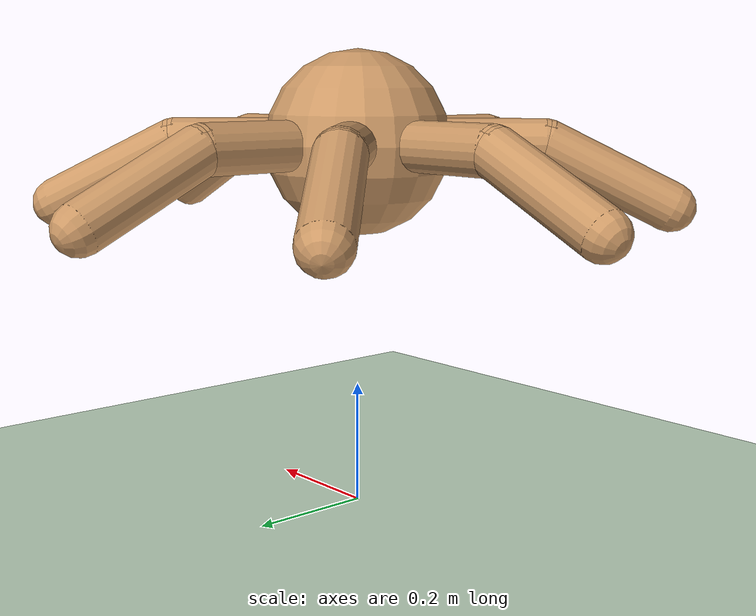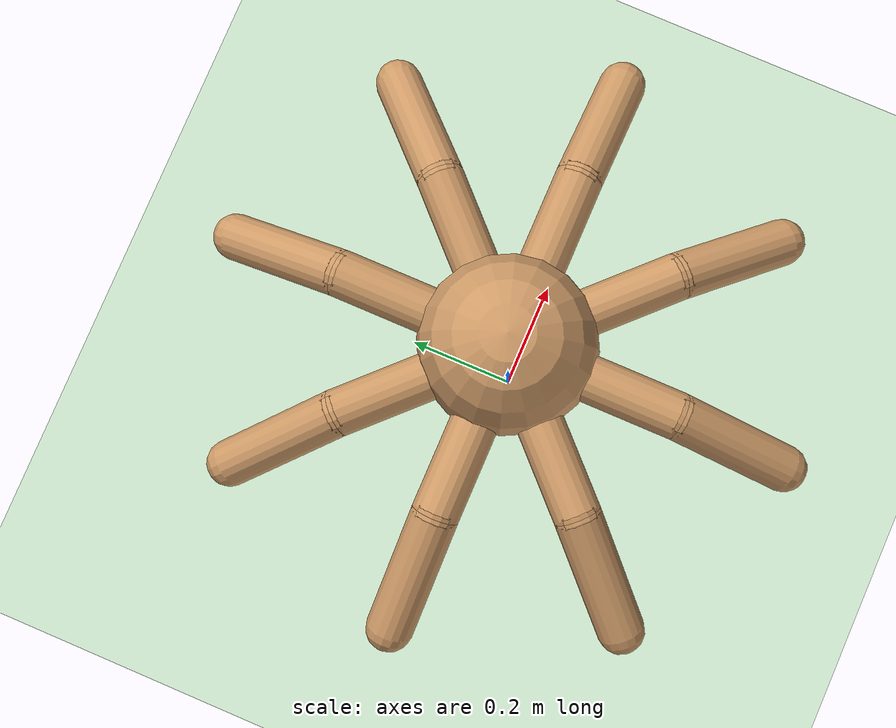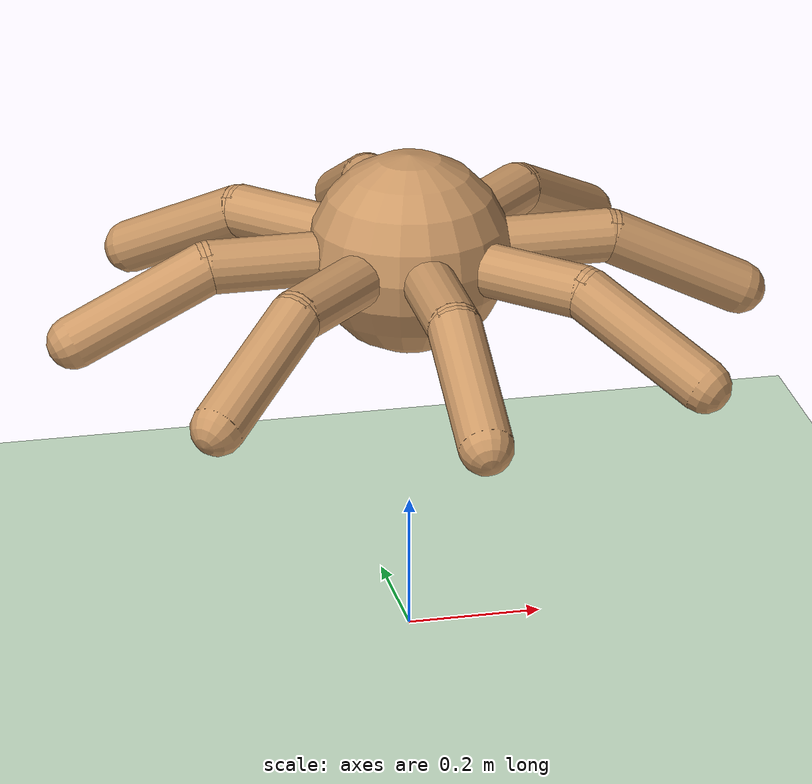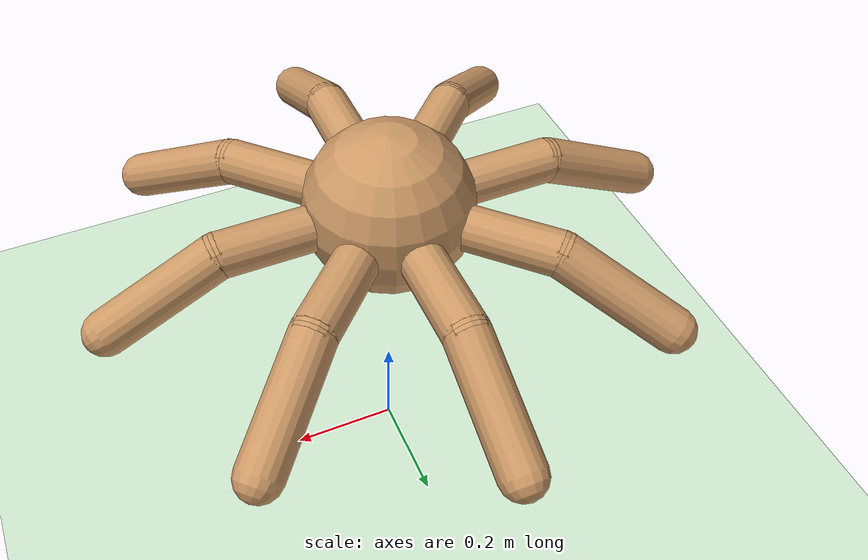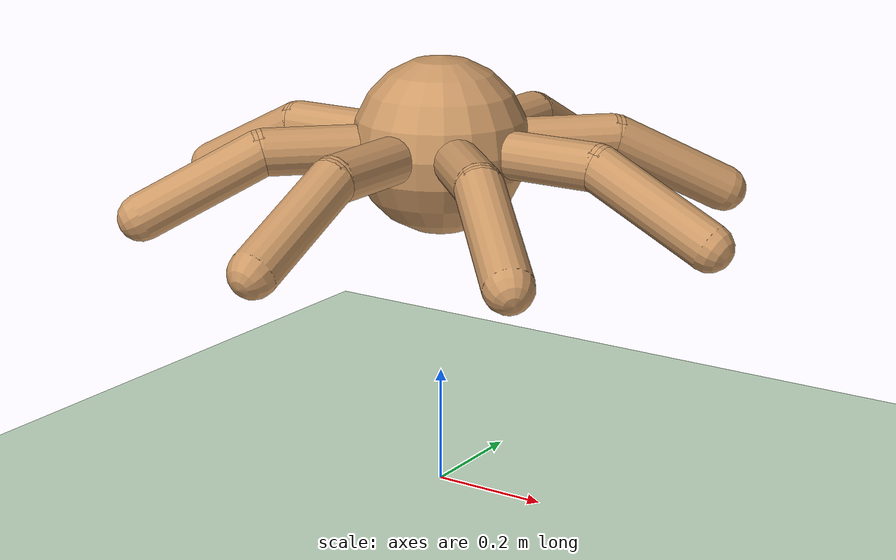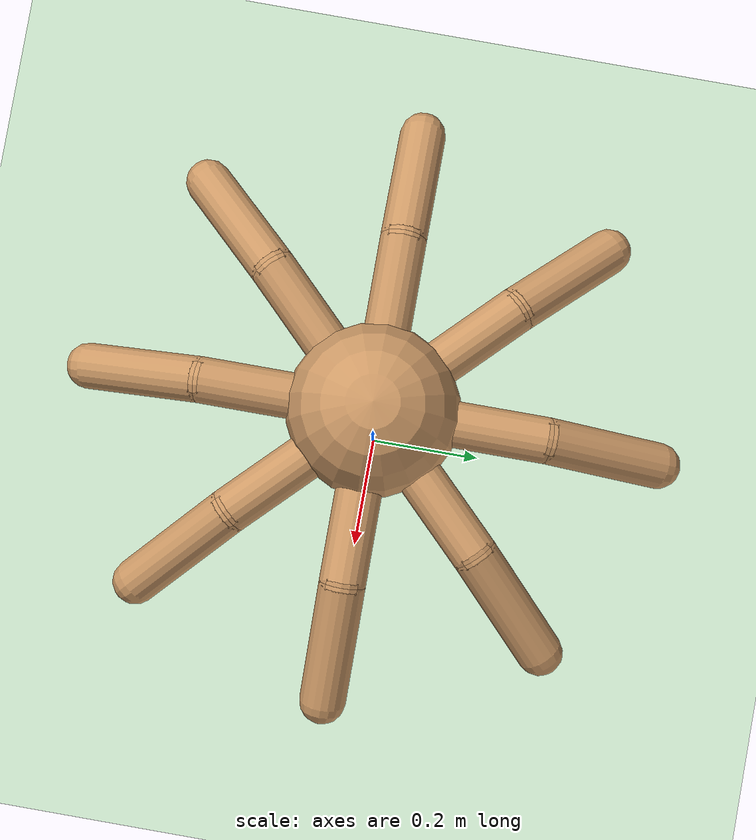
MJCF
<mujoco model="mutant_ant">
  <compiler angle="degree" coordinate="local" inertiafromgeom="true"/>
  <option integrator="RK4" timestep="0.01"/>
  <default>
    <joint armature="1" damping="1" limited="true"/>
    <geom conaffinity="1" condim="3" density="5.0" friction="1 0.5 0.5" margin="0.01" rgba="0.8 0.6 0.4 1"/>
  </default>
  <asset>
    <texture builtin="checker" height="512" name="texplane" rgb1=".2 .3 .4" rgb2=".1 0.15 0.2" type="2d" width="512"/>
    <material name="MatPlane" reflectance="0.5" shininess="1" specular="1" texrepeat="60 60" texture="texplane"/>
  </asset>
  <worldbody>
    <light cutoff="100" diffuse="1 1 1" dir="-0 0 -1.3" directional="true" exponent="1" pos="0 0 1.3" specular=".1 .1 .1"/>
    <geom conaffinity="1" condim="3" material="MatPlane" name="floor" pos="0 0 0" rgba="0.8 0.9 0.8 1" size="40 40 40" type="plane"/>
    <body name="torso" pos="0 0 0.600">
      <camera name="track" mode="trackcom" pos="0 -3 2.0" euler="60 0 0"/>
      <freejoint name="root"/>
      <geom name="torso_geom" pos="0 0 0" size="0.15" type="sphere"/>
      <body name="leg_0" pos="0 0 0" euler="0 0 0.000">
        <geom fromto="0.0 0.0 0.0 0.1 0.0 0.0" name="aux_0_geom" size="0.04" type="capsule"/>
        <body name="leg_0_aux" pos="0.1 0.0 0">
          <joint axis="0 0 1" name="hip_0" pos="0.0 0.0 0.0" range="-30.000 30.000" type="hinge"/>
          <geom fromto="0.0 0.0 0.0 0.200 0.0 0.0" name="thigh_0_geom" size="0.04" type="capsule"/>
          <body pos="0.200 0.0 0" name="leg_0_ankle">
            <joint axis="0 1 0" name="ankle_0" pos="0.0 0.0 0.0" range="30.000 70.000" type="hinge"/>
            <geom fromto="0.0 0.0 0.0 0.200 0.0 -0.1" name="calf_0_geom" size="0.04" type="capsule"/>
          </body>
        </body>
      </body>
      <body name="leg_1" pos="0 0 0" euler="0 0 45.000">
        <geom fromto="0.0 0.0 0.0 0.1 0.0 0.0" name="aux_1_geom" size="0.04" type="capsule"/>
        <body name="leg_1_aux" pos="0.1 0.0 0">
          <joint axis="0 0 1" name="hip_1" pos="0.0 0.0 0.0" range="-30.000 30.000" type="hinge"/>
          <geom fromto="0.0 0.0 0.0 0.200 0.0 0.0" name="thigh_1_geom" size="0.04" type="capsule"/>
          <body pos="0.200 0.0 0" name="leg_1_ankle">
            <joint axis="0 1 0" name="ankle_1" pos="0.0 0.0 0.0" range="30.000 70.000" type="hinge"/>
            <geom fromto="0.0 0.0 0.0 0.200 0.0 -0.1" name="calf_1_geom" size="0.04" type="capsule"/>
          </body>
        </body>
      </body>
      <body name="leg_2" pos="0 0 0" euler="0 0 90.000">
        <geom fromto="0.0 0.0 0.0 0.1 0.0 0.0" name="aux_2_geom" size="0.04" type="capsule"/>
        <body name="leg_2_aux" pos="0.1 0.0 0">
          <joint axis="0 0 1" name="hip_2" pos="0.0 0.0 0.0" range="-30.000 30.000" type="hinge"/>
          <geom fromto="0.0 0.0 0.0 0.200 0.0 0.0" name="thigh_2_geom" size="0.04" type="capsule"/>
          <body pos="0.200 0.0 0" name="leg_2_ankle">
            <joint axis="0 1 0" name="ankle_2" pos="0.0 0.0 0.0" range="30.000 70.000" type="hinge"/>
            <geom fromto="0.0 0.0 0.0 0.200 0.0 -0.1" name="calf_2_geom" size="0.04" type="capsule"/>
          </body>
        </body>
      </body>
      <body name="leg_3" pos="0 0 0" euler="0 0 135.000">
        <geom fromto="0.0 0.0 0.0 0.1 0.0 0.0" name="aux_3_geom" size="0.04" type="capsule"/>
        <body name="leg_3_aux" pos="0.1 0.0 0">
          <joint axis="0 0 1" name="hip_3" pos="0.0 0.0 0.0" range="-30.000 30.000" type="hinge"/>
          <geom fromto="0.0 0.0 0.0 0.200 0.0 0.0" name="thigh_3_geom" size="0.04" type="capsule"/>
          <body pos="0.200 0.0 0" name="leg_3_ankle">
            <joint axis="0 1 0" name="ankle_3" pos="0.0 0.0 0.0" range="30.000 70.000" type="hinge"/>
            <geom fromto="0.0 0.0 0.0 0.200 0.0 -0.1" name="calf_3_geom" size="0.04" type="capsule"/>
          </body>
        </body>
      </body>
      <body name="leg_4" pos="0 0 0" euler="0 0 180.000">
        <geom fromto="0.0 0.0 0.0 0.1 0.0 0.0" name="aux_4_geom" size="0.04" type="capsule"/>
        <body name="leg_4_aux" pos="0.1 0.0 0">
          <joint axis="0 0 1" name="hip_4" pos="0.0 0.0 0.0" range="-30.000 30.000" type="hinge"/>
          <geom fromto="0.0 0.0 0.0 0.200 0.0 0.0" name="thigh_4_geom" size="0.04" type="capsule"/>
          <body pos="0.200 0.0 0" name="leg_4_ankle">
            <joint axis="0 1 0" name="ankle_4" pos="0.0 0.0 0.0" range="30.000 70.000" type="hinge"/>
            <geom fromto="0.0 0.0 0.0 0.200 0.0 -0.1" name="calf_4_geom" size="0.04" type="capsule"/>
          </body>
        </body>
      </body>
      <body name="leg_5" pos="0 0 0" euler="0 0 225.000">
        <geom fromto="0.0 0.0 0.0 0.1 0.0 0.0" name="aux_5_geom" size="0.04" type="capsule"/>
        <body name="leg_5_aux" pos="0.1 0.0 0">
          <joint axis="0 0 1" name="hip_5" pos="0.0 0.0 0.0" range="-30.000 30.000" type="hinge"/>
          <geom fromto="0.0 0.0 0.0 0.200 0.0 0.0" name="thigh_5_geom" size="0.04" type="capsule"/>
          <body pos="0.200 0.0 0" name="leg_5_ankle">
            <joint axis="0 1 0" name="ankle_5" pos="0.0 0.0 0.0" range="30.000 70.000" type="hinge"/>
            <geom fromto="0.0 0.0 0.0 0.200 0.0 -0.1" name="calf_5_geom" size="0.04" type="capsule"/>
          </body>
        </body>
      </body>
      <body name="leg_6" pos="0 0 0" euler="0 0 270.000">
        <geom fromto="0.0 0.0 0.0 0.1 0.0 0.0" name="aux_6_geom" size="0.04" type="capsule"/>
        <body name="leg_6_aux" pos="0.1 0.0 0">
          <joint axis="0 0 1" name="hip_6" pos="0.0 0.0 0.0" range="-30.000 30.000" type="hinge"/>
          <geom fromto="0.0 0.0 0.0 0.200 0.0 0.0" name="thigh_6_geom" size="0.04" type="capsule"/>
          <body pos="0.200 0.0 0" name="leg_6_ankle">
            <joint axis="0 1 0" name="ankle_6" pos="0.0 0.0 0.0" range="30.000 70.000" type="hinge"/>
            <geom fromto="0.0 0.0 0.0 0.200 0.0 -0.1" name="calf_6_geom" size="0.04" type="capsule"/>
          </body>
        </body>
      </body>
      <body name="leg_7" pos="0 0 0" euler="0 0 315.000">
        <geom fromto="0.0 0.0 0.0 0.1 0.0 0.0" name="aux_7_geom" size="0.04" type="capsule"/>
        <body name="leg_7_aux" pos="0.1 0.0 0">
          <joint axis="0 0 1" name="hip_7" pos="0.0 0.0 0.0" range="-30.000 30.000" type="hinge"/>
          <geom fromto="0.0 0.0 0.0 0.200 0.0 0.0" name="thigh_7_geom" size="0.04" type="capsule"/>
          <body pos="0.200 0.0 0" name="leg_7_ankle">
            <joint axis="0 1 0" name="ankle_7" pos="0.0 0.0 0.0" range="30.000 70.000" type="hinge"/>
            <geom fromto="0.0 0.0 0.0 0.200 0.0 -0.1" name="calf_7_geom" size="0.04" type="capsule"/>
          </body>
        </body>
      </body>
    </body>
  </worldbody>
  <actuator>
    <motor ctrllimited="true" ctrlrange="-1.0 1.0" joint="hip_0" gear="30"/>
    <motor ctrllimited="true" ctrlrange="-1.0 1.0" joint="ankle_0" gear="30"/>
    <motor ctrllimited="true" ctrlrange="-1.0 1.0" joint="hip_1" gear="30"/>
    <motor ctrllimited="true" ctrlrange="-1.0 1.0" joint="ankle_1" gear="30"/>
    <motor ctrllimited="true" ctrlrange="-1.0 1.0" joint="hip_2" gear="30"/>
    <motor ctrllimited="true" ctrlrange="-1.0 1.0" joint="ankle_2" gear="30"/>
    <motor ctrllimited="true" ctrlrange="-1.0 1.0" joint="hip_3" gear="30"/>
    <motor ctrllimited="true" ctrlrange="-1.0 1.0" joint="ankle_3" gear="30"/>
    <motor ctrllimited="true" ctrlrange="-1.0 1.0" joint="hip_4" gear="30"/>
    <motor ctrllimited="true" ctrlrange="-1.0 1.0" joint="ankle_4" gear="30"/>
    <motor ctrllimited="true" ctrlrange="-1.0 1.0" joint="hip_5" gear="30"/>
    <motor ctrllimited="true" ctrlrange="-1.0 1.0" joint="ankle_5" gear="30"/>
    <motor ctrllimited="true" ctrlrange="-1.0 1.0" joint="hip_6" gear="30"/>
    <motor ctrllimited="true" ctrlrange="-1.0 1.0" joint="ankle_6" gear="30"/>
    <motor ctrllimited="true" ctrlrange="-1.0 1.0" joint="hip_7" gear="30"/>
    <motor ctrllimited="true" ctrlrange="-1.0 1.0" joint="ankle_7" gear="30"/>
  </actuator>
</mujoco>
